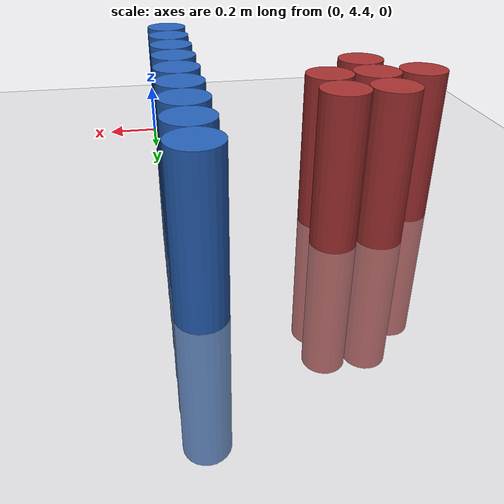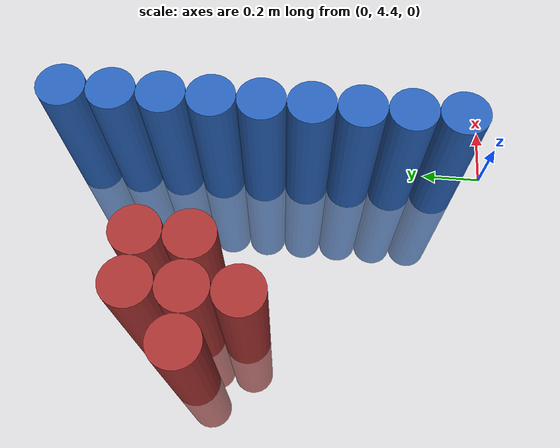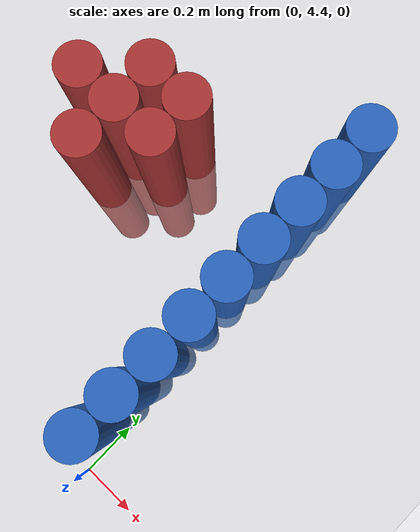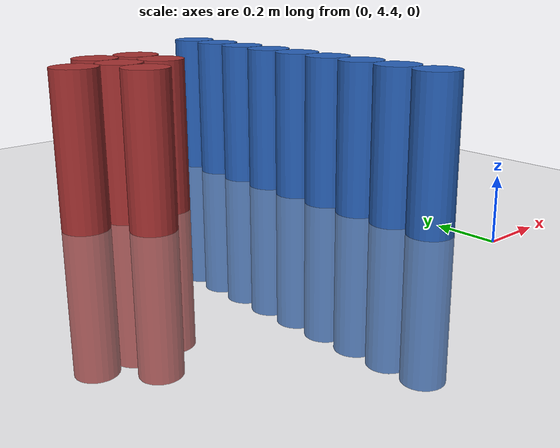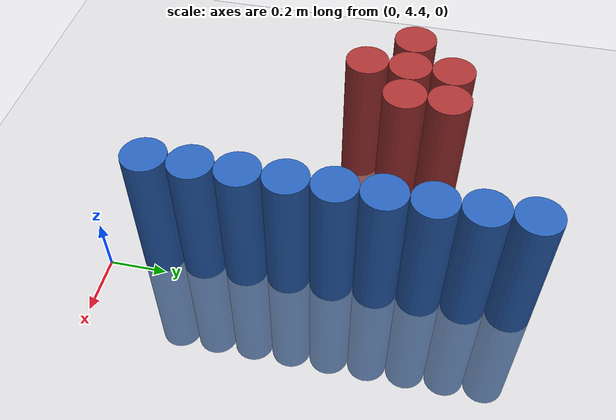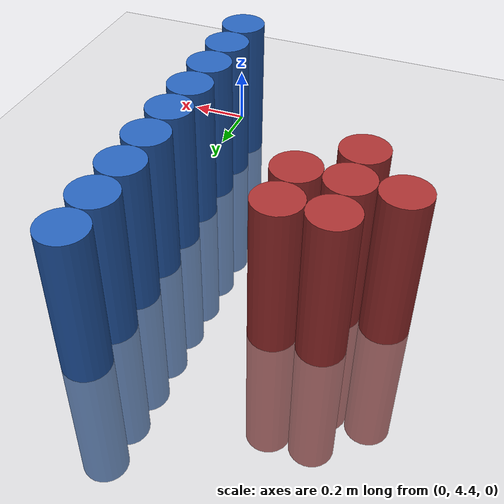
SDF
<sdf version="1.6">
 <world name="default">
  <model name="ground_plane">
   <static>1</static>
   <link name="link">
    <collision name="collision">
     <geometry><plane><normal>0 0 1</normal><size>100 100</size></plane></geometry>
     <surface><friction><ode><mu>100</mu><mu2>50</mu2></ode></friction></surface>
    </collision>
    <visual name="visual">
     <cast_shadows>0</cast_shadows>
     <geometry><plane><normal>0 0 1</normal><size>100 100</size></plane></geometry>
     <material>
      <script><uri>file://media/materials/scripts/gazebo.material</uri><name>Gazebo/Grey</name></script>
     </material>
    </visual>
   </link>
  </model>
  <model name="unit_cylinder_88">
   <static>1</static>
   <pose>-0.075000 4.575000 0.000000 0.000000 0.000000 0.000000</pose>
   <link name="link">
    <inertial>
     <mass>1</mass>
     <inertia><ixx>0.145833</ixx><ixy>0</ixy><ixz>0</ixz><iyy>0.145833</iyy><iyz>0</iyz><izz>0.125</izz></inertia>
    </inertial>
    <collision name="collision">
     <geometry><cylinder><radius>0.075000</radius><length>1</length></cylinder></geometry>
    </collision>
    <visual name="visual">
     <geometry><cylinder><radius>0.075000</radius><length>1</length></cylinder></geometry>
     <material>
      <ambient>0.152000 0.379000 0.720000 1</ambient>
      <diffuse>0.152000 0.379000 0.720000 1</diffuse>
     </material>
     <material>
      <script><name>Gazebo/Grey</name><uri>file://media/materials/scripts/gazebo.material</uri></script>
     </material>
    </visual>
   </link>
  </model>
  <model name="unit_cylinder_90">
   <static>1</static>
   <pose>-0.075000 4.725000 0.000000 0.000000 0.000000 0.000000</pose>
   <link name="link">
    <inertial>
     <mass>1</mass>
     <inertia><ixx>0.145833</ixx><ixy>0</ixy><ixz>0</ixz><iyy>0.145833</iyy><iyz>0</iyz><izz>0.125</izz></inertia>
    </inertial>
    <collision name="collision">
     <geometry><cylinder><radius>0.075000</radius><length>1</length></cylinder></geometry>
    </collision>
    <visual name="visual">
     <geometry><cylinder><radius>0.075000</radius><length>1</length></cylinder></geometry>
     <material>
      <ambient>0.152000 0.379000 0.720000 1</ambient>
      <diffuse>0.152000 0.379000 0.720000 1</diffuse>
     </material>
     <material>
      <script><name>Gazebo/Grey</name><uri>file://media/materials/scripts/gazebo.material</uri></script>
     </material>
    </visual>
   </link>
  </model>
  <model name="unit_cylinder_92">
   <static>1</static>
   <pose>-0.075000 4.875000 0.000000 0.000000 0.000000 0.000000</pose>
   <link name="link">
    <inertial>
     <mass>1</mass>
     <inertia><ixx>0.145833</ixx><ixy>0</ixy><ixz>0</ixz><iyy>0.145833</iyy><iyz>0</iyz><izz>0.125</izz></inertia>
    </inertial>
    <collision name="collision">
     <geometry><cylinder><radius>0.075000</radius><length>1</length></cylinder></geometry>
    </collision>
    <visual name="visual">
     <geometry><cylinder><radius>0.075000</radius><length>1</length></cylinder></geometry>
     <material>
      <ambient>0.152000 0.379000 0.720000 1</ambient>
      <diffuse>0.152000 0.379000 0.720000 1</diffuse>
     </material>
     <material>
      <script><name>Gazebo/Grey</name><uri>file://media/materials/scripts/gazebo.material</uri></script>
     </material>
    </visual>
   </link>
  </model>
  <model name="unit_cylinder_94">
   <static>1</static>
   <pose>-0.075000 5.025000 0.000000 0.000000 0.000000 0.000000</pose>
   <link name="link">
    <inertial>
     <mass>1</mass>
     <inertia><ixx>0.145833</ixx><ixy>0</ixy><ixz>0</ixz><iyy>0.145833</iyy><iyz>0</iyz><izz>0.125</izz></inertia>
    </inertial>
    <collision name="collision">
     <geometry><cylinder><radius>0.075000</radius><length>1</length></cylinder></geometry>
    </collision>
    <visual name="visual">
     <geometry><cylinder><radius>0.075000</radius><length>1</length></cylinder></geometry>
     <material>
      <ambient>0.152000 0.379000 0.720000 1</ambient>
      <diffuse>0.152000 0.379000 0.720000 1</diffuse>
     </material>
     <material>
      <script><name>Gazebo/Grey</name><uri>file://media/materials/scripts/gazebo.material</uri></script>
     </material>
    </visual>
   </link>
  </model>
  <model name="unit_cylinder_177">
   <static>1</static>
   <pose>-0.825000 5.325000 0.000000 0.000000 0.000000 0.000000</pose>
   <link name="link">
    <inertial>
     <mass>1</mass>
     <inertia><ixx>0.145833</ixx><ixy>0</ixy><ixz>0</ixz><iyy>0.145833</iyy><iyz>0</iyz><izz>0.125</izz></inertia>
    </inertial>
    <collision name="collision">
     <geometry><cylinder><radius>0.075000</radius><length>1</length></cylinder></geometry>
    </collision>
    <visual name="visual">
     <geometry><cylinder><radius>0.075000</radius><length>1</length></cylinder></geometry>
     <material>
      <ambient>0.648000 0.192000 0.192000 1</ambient>
      <diffuse>0.648000 0.192000 0.192000 1</diffuse>
     </material>
     <material>
      <script><name>Gazebo/Grey</name><uri>file://media/materials/scripts/gazebo.material</uri></script>
     </material>
    </visual>
   </link>
  </model>
  <model name="unit_cylinder_180">
   <static>1</static>
   <pose>-0.675000 5.175000 0.000000 0.000000 0.000000 0.000000</pose>
   <link name="link">
    <inertial>
     <mass>1</mass>
     <inertia><ixx>0.145833</ixx><ixy>0</ixy><ixz>0</ixz><iyy>0.145833</iyy><iyz>0</iyz><izz>0.125</izz></inertia>
    </inertial>
    <collision name="collision">
     <geometry><cylinder><radius>0.075000</radius><length>1</length></cylinder></geometry>
    </collision>
    <visual name="visual">
     <geometry><cylinder><radius>0.075000</radius><length>1</length></cylinder></geometry>
     <material>
      <ambient>0.648000 0.192000 0.192000 1</ambient>
      <diffuse>0.648000 0.192000 0.192000 1</diffuse>
     </material>
     <material>
      <script><name>Gazebo/Grey</name><uri>file://media/materials/scripts/gazebo.material</uri></script>
     </material>
    </visual>
   </link>
  </model>
  <model name="unit_cylinder_181">
   <static>1</static>
   <pose>-0.675000 5.325000 0.000000 0.000000 0.000000 0.000000</pose>
   <link name="link">
    <inertial>
     <mass>1</mass>
     <inertia><ixx>0.145833</ixx><ixy>0</ixy><ixz>0</ixz><iyy>0.145833</iyy><iyz>0</iyz><izz>0.125</izz></inertia>
    </inertial>
    <collision name="collision">
     <geometry><cylinder><radius>0.075000</radius><length>1</length></cylinder></geometry>
    </collision>
    <visual name="visual">
     <geometry><cylinder><radius>0.075000</radius><length>1</length></cylinder></geometry>
     <material>
      <ambient>0.648000 0.192000 0.192000 1</ambient>
      <diffuse>0.648000 0.192000 0.192000 1</diffuse>
     </material>
     <material>
      <script><name>Gazebo/Grey</name><uri>file://media/materials/scripts/gazebo.material</uri></script>
     </material>
    </visual>
   </link>
  </model>
  <model name="unit_cylinder_182">
   <static>1</static>
   <pose>-0.675000 5.475000 0.000000 0.000000 0.000000 0.000000</pose>
   <link name="link">
    <inertial>
     <mass>1</mass>
     <inertia><ixx>0.145833</ixx><ixy>0</ixy><ixz>0</ixz><iyy>0.145833</iyy><iyz>0</iyz><izz>0.125</izz></inertia>
    </inertial>
    <collision name="collision">
     <geometry><cylinder><radius>0.075000</radius><length>1</length></cylinder></geometry>
    </collision>
    <visual name="visual">
     <geometry><cylinder><radius>0.075000</radius><length>1</length></cylinder></geometry>
     <material>
      <ambient>0.648000 0.192000 0.192000 1</ambient>
      <diffuse>0.648000 0.192000 0.192000 1</diffuse>
     </material>
     <material>
      <script><name>Gazebo/Grey</name><uri>file://media/materials/scripts/gazebo.material</uri></script>
     </material>
    </visual>
   </link>
  </model>
  <model name="unit_cylinder_185">
   <static>1</static>
   <pose>-0.525000 5.325000 0.000000 0.000000 0.000000 0.000000</pose>
   <link name="link">
    <inertial>
     <mass>1</mass>
     <inertia><ixx>0.145833</ixx><ixy>0</ixy><ixz>0</ixz><iyy>0.145833</iyy><iyz>0</iyz><izz>0.125</izz></inertia>
    </inertial>
    <collision name="collision">
     <geometry><cylinder><radius>0.075000</radius><length>1</length></cylinder></geometry>
    </collision>
    <visual name="visual">
     <geometry><cylinder><radius>0.075000</radius><length>1</length></cylinder></geometry>
     <material>
      <ambient>0.648000 0.192000 0.192000 1</ambient>
      <diffuse>0.648000 0.192000 0.192000 1</diffuse>
     </material>
     <material>
      <script><name>Gazebo/Grey</name><uri>file://media/materials/scripts/gazebo.material</uri></script>
     </material>
    </visual>
   </link>
  </model>
  <model name="unit_cylinder_186">
   <static>1</static>
   <pose>-0.525000 5.475000 0.000000 0.000000 0.000000 0.000000</pose>
   <link name="link">
    <inertial>
     <mass>1</mass>
     <inertia><ixx>0.145833</ixx><ixy>0</ixy><ixz>0</ixz><iyy>0.145833</iyy><iyz>0</iyz><izz>0.125</izz></inertia>
    </inertial>
    <collision name="collision">
     <geometry><cylinder><radius>0.075000</radius><length>1</length></cylinder></geometry>
    </collision>
    <visual name="visual">
     <geometry><cylinder><radius>0.075000</radius><length>1</length></cylinder></geometry>
     <material>
      <ambient>0.648000 0.192000 0.192000 1</ambient>
      <diffuse>0.648000 0.192000 0.192000 1</diffuse>
     </material>
     <material>
      <script><name>Gazebo/Grey</name><uri>file://media/materials/scripts/gazebo.material</uri></script>
     </material>
    </visual>
   </link>
  </model>
  <model name="unit_cylinder_204">
   <static>1</static>
   <pose>-0.075000 5.175000 0.000000 0.000000 0.000000 0.000000</pose>
   <link name="link">
    <inertial>
     <mass>1</mass>
     <inertia><ixx>0.145833</ixx><ixy>0</ixy><ixz>0</ixz><iyy>0.145833</iyy><iyz>0</iyz><izz>0.125</izz></inertia>
    </inertial>
    <collision name="collision">
     <geometry><cylinder><radius>0.075000</radius><length>1</length></cylinder></geometry>
    </collision>
    <visual name="visual">
     <geometry><cylinder><radius>0.075000</radius><length>1</length></cylinder></geometry>
     <material>
      <ambient>0.152000 0.379000 0.720000 1</ambient>
      <diffuse>0.152000 0.379000 0.720000 1</diffuse>
     </material>
     <material>
      <script><name>Gazebo/Grey</name><uri>file://media/materials/scripts/gazebo.material</uri></script>
     </material>
    </visual>
   </link>
  </model>
  <model name="unit_cylinder_205">
   <static>1</static>
   <pose>-0.075000 5.325000 0.000000 0.000000 0.000000 0.000000</pose>
   <link name="link">
    <inertial>
     <mass>1</mass>
     <inertia><ixx>0.145833</ixx><ixy>0</ixy><ixz>0</ixz><iyy>0.145833</iyy><iyz>0</iyz><izz>0.125</izz></inertia>
    </inertial>
    <collision name="collision">
     <geometry><cylinder><radius>0.075000</radius><length>1</length></cylinder></geometry>
    </collision>
    <visual name="visual">
     <geometry><cylinder><radius>0.075000</radius><length>1</length></cylinder></geometry>
     <material>
      <ambient>0.152000 0.379000 0.720000 1</ambient>
      <diffuse>0.152000 0.379000 0.720000 1</diffuse>
     </material>
     <material>
      <script><name>Gazebo/Grey</name><uri>file://media/materials/scripts/gazebo.material</uri></script>
     </material>
    </visual>
   </link>
  </model>
  <model name="unit_cylinder_206">
   <static>1</static>
   <pose>-0.075000 5.475000 0.000000 0.000000 0.000000 0.000000</pose>
   <link name="link">
    <inertial>
     <mass>1</mass>
     <inertia><ixx>0.145833</ixx><ixy>0</ixy><ixz>0</ixz><iyy>0.145833</iyy><iyz>0</iyz><izz>0.125</izz></inertia>
    </inertial>
    <collision name="collision">
     <geometry><cylinder><radius>0.075000</radius><length>1</length></cylinder></geometry>
    </collision>
    <visual name="visual">
     <geometry><cylinder><radius>0.075000</radius><length>1</length></cylinder></geometry>
     <material>
      <ambient>0.152000 0.379000 0.720000 1</ambient>
      <diffuse>0.152000 0.379000 0.720000 1</diffuse>
     </material>
     <material>
      <script><name>Gazebo/Grey</name><uri>file://media/materials/scripts/gazebo.material</uri></script>
     </material>
    </visual>
   </link>
  </model>
  <model name="unit_cylinder_207">
   <static>1</static>
   <pose>-0.075000 5.625000 0.000000 0.000000 0.000000 0.000000</pose>
   <link name="link">
    <inertial>
     <mass>1</mass>
     <inertia><ixx>0.145833</ixx><ixy>0</ixy><ixz>0</ixz><iyy>0.145833</iyy><iyz>0</iyz><izz>0.125</izz></inertia>
    </inertial>
    <collision name="collision">
     <geometry><cylinder><radius>0.075000</radius><length>1</length></cylinder></geometry>
    </collision>
    <visual name="visual">
     <geometry><cylinder><radius>0.075000</radius><length>1</length></cylinder></geometry>
     <material>
      <ambient>0.152000 0.379000 0.720000 1</ambient>
      <diffuse>0.152000 0.379000 0.720000 1</diffuse>
     </material>
     <material>
      <script><name>Gazebo/Grey</name><uri>file://media/materials/scripts/gazebo.material</uri></script>
     </material>
    </visual>
   </link>
  </model>
  <model name="unit_cylinder_208">
   <static>1</static>
   <pose>-0.075000 5.775000 0.000000 0.000000 0.000000 0.000000</pose>
   <link name="link">
    <inertial>
     <mass>1</mass>
     <inertia><ixx>0.145833</ixx><ixy>0</ixy><ixz>0</ixz><iyy>0.145833</iyy><iyz>0</iyz><izz>0.125</izz></inertia>
    </inertial>
    <collision name="collision">
     <geometry><cylinder><radius>0.075000</radius><length>1</length></cylinder></geometry>
    </collision>
    <visual name="visual">
     <geometry><cylinder><radius>0.075000</radius><length>1</length></cylinder></geometry>
     <material>
      <ambient>0.152000 0.379000 0.720000 1</ambient>
      <diffuse>0.152000 0.379000 0.720000 1</diffuse>
     </material>
     <material>
      <script><name>Gazebo/Grey</name><uri>file://media/materials/scripts/gazebo.material</uri></script>
     </material>
    </visual>
   </link>
  </model>
 </world>
</sdf>
